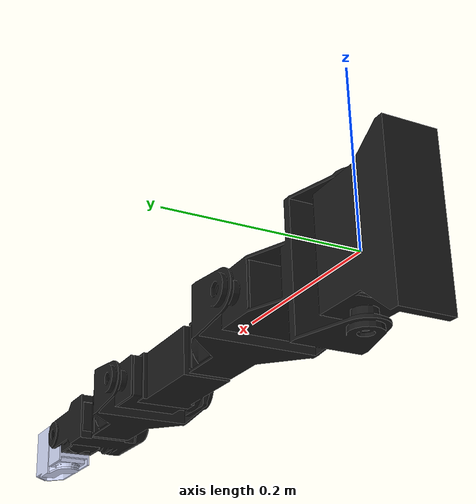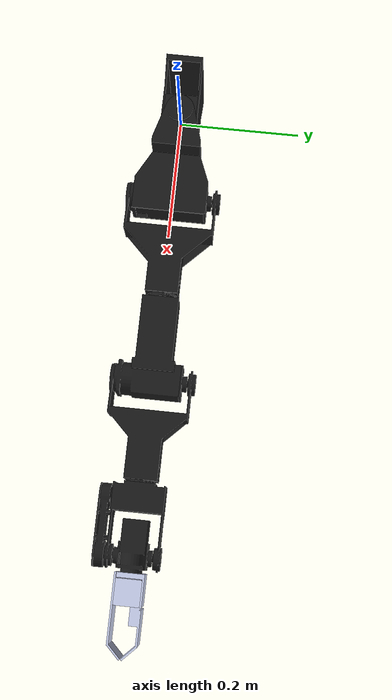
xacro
<?xml version="1.0"?>
<robot name="rb1_arm" xmlns:xacro="http://www.ros.org/wiki/xacro">

	<!-- Imported elements -->

	<!-- First we import all posible elements defined in the urdf.xacro files. All these elements are defined as macro:xacros -->

	<!-- Import RB1 arm elements -->
	<xacro:include filename="$(find rb1_arm_description)/urdf/arms/rb1_arm_7dof.urdf.xacro" />

	<!-- Import all available sensors -->
	<!-- xacro:include filename="$(find rb1_arm_description)/urdf/sensors/all_sensors.urdf.xacro" / -->

	<xacro:include filename="$(find rb1_arm_description)/urdf/grippers/rb1_gripper_1.urdf.xacro" />

	<!-- Joint elements -->
	<joint
	  name="gripper_joint"
      type="fixed">
		<origin
		  xyz="0.055 0.0 0.0"
		  rpy="0.0 0.0 0.0" />
		<parent link="end_effector_rb1_arm" />
		<child link="base_link_gripper" />
		<axis xyz="1 0 0" />
	</joint>

	<!-- Global parameters -->
	<xacro:property name="PI" value="3.1415926535897931"/>

	<!-- Flag to select the high or low quality model -->
	<xacro:property name="hq" value="true" />

	<!-- RB-1 arm -->
	<xacro:rb1_arm_7dof name="rb1_arm_7dof" hq="${hq}" />

	<!-- Gazebo ros control plugins -->
	<!-- xacro:ros_control/ -->

</robot>

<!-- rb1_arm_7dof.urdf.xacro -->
<robot name="rb1_arm_7dof" xmlns:xacro="http://www.ros.org/wiki/xacro">

	<xacro:include filename="$(find rb1_arm_description)/urdf/arms/rb1_arm_7dof.gazebo.xacro" />

	<xacro:property name="j1_mechanical_reduction" value="502.0"/>
	<xacro:property name="j1_motor_torque_constant" value="50.0"/>
	<xacro:property name="j2_mechanical_reduction" value="502.0"/>
	<xacro:property name="j2_motor_torque_constant" value="50.0"/>
	<xacro:property name="j3_mechanical_reduction" value="502.0"/>
	<xacro:property name="j3_motor_torque_constant" value="50.0"/>
	<xacro:property name="j4_mechanical_reduction" value="502.0"/>
	<xacro:property name="j4_motor_torque_constant" value="5.0"/>
	<xacro:property name="j5_mechanical_reduction" value="502.0"/>
	<xacro:property name="j5_motor_torque_constant" value="5.0"/>
	<xacro:property name="j6_mechanical_reduction" value="304.0"/>
	<xacro:property name="j6_motor_torque_constant" value="3.0"/>
	<xacro:property name="j7_mechanical_reduction" value="304.0"/>
	<xacro:property name="j7_motor_torque_constant" value="3.0"/>

	<xacro:property name="j1_lower_limit" value="-1.55"/>
	<xacro:property name="j1_upper_limit" value="1.55"/>
	<xacro:property name="j2_lower_limit" value="-1.95"/>
	<xacro:property name="j2_upper_limit" value="1.55"/>
	<xacro:property name="j3_lower_limit" value="-3.13"/>
	<xacro:property name="j3_upper_limit" value="3.13"/>
	<xacro:property name="j4_lower_limit" value="-1.95"/>
	<xacro:property name="j4_upper_limit" value="1.95"/>
	<xacro:property name="j5_lower_limit" value="-3.13"/>
	<xacro:property name="j5_upper_limit" value="3.13"/>
	<xacro:property name="j6_lower_limit" value="-1.57"/>
	<xacro:property name="j6_upper_limit" value="1.57"/>
	<xacro:property name="j7_lower_limit" value="-3.13"/>
	<xacro:property name="j7_upper_limit" value="3.13"/>

	<xacro:property name="joint_effort_limit_H54_200" value="60.0"/>
	<xacro:property name="joint_velocity_limit_H54_200" value="2.9217"/>
	<xacro:property name="joint_effort_limit_H54_100" value="35.0"/>
	<xacro:property name="joint_velocity_limit_H54_100" value="3.1527"/>
	<xacro:property name="joint_effort_limit_L42" value="8.0"/>
	<xacro:property name="joint_velocity_limit_L42" value="2.98452"/>

	<xacro:property name="joint_damping" value="0.7"/>
	<xacro:property name="joint_friction" value="0.5"/>

	<xacro:macro name="rb1_arm_7dof" params="name hq">

    <!-- Robot mechanical and motor parameters -->
    <xacro:property name="PI" value="3.1415926535897931"/>

    <!-- BASE_LINK -->
    <link
      name="base_link_rb1_arm">
    </link>

	<joint
		  name="j1_rb1_arm"
		  type="fixed">
		<origin
		  xyz="0.0 0.0 0.0"
		  rpy="0.0 0.0 0.0" />
		<parent
		  link="base_link_rb1_arm" />
		<child
		  link="link01_rb1_arm" />
		<axis
		  xyz="0 0 0" />
	</joint>

	<link name="link01_rb1_arm">
		<inertial>
		  <mass value="0.506" />
		  <origin xyz="-0.05161 0 -0.003" />
		  <inertia  ixx="0.0014526484" ixy="0.0"  ixz="-8.792613e-005" iyy="0.0018217854" iyx="0.0"  iyz="0.0" izz="0.0008987159" />
		</inertial>
		<visual>
		   <origin xyz="0 0 0" rpy="0 0 0" />
		   <xacro:if value="${hq}">
		   <geometry>
			 <mesh filename="package://rb1_arm_description/meshes/arms/armRB1_1_link.dae"/>
		   </geometry>
		   </xacro:if>
		   <xacro:unless value="${hq}">
		   <geometry>
		   <mesh filename="package://rb1_arm_description/meshes/arms/armRB1_1_link.stl"/>
		   </geometry>
		   </xacro:unless>
		   <material name="darkgrey">
			 <color rgba="0.1 0.1 0.1 1"/>
		   </material>
		</visual>
		<collision>
		   <origin xyz="0 0 0" rpy="0 0 0 " />
		   <geometry>
			 <mesh filename="package://rb1_arm_description/meshes/arms/armRB1_1_link.dae"/>
		   </geometry>
		</collision>
	</link>

	<link name="motor01_rb1_arm">
		<inertial>
		  <mass value="0.855" />
		  <origin xyz="0 0 0.00693" />
		  <!--inertia  ixx="0.01" ixy="0.0"  ixz="0.0"  iyy="0.01"  iyz="0.0"  izz="0.01" /-->
		  <inertia ixx="0.001211476" ixy="0.0" ixz="6.05332e-006" iyy="0.001211334" iyz="0.0" izz="0.0003787678"/>

		</inertial>
		<visual>
		   <origin xyz="0 0 0" rpy="0 0 0" />
		   <xacro:if value="${hq}">
		   <geometry>
			 <mesh filename="package://rb1_arm_description/meshes/arms/armRB1_1_motor.dae"/>
		   </geometry>
		   </xacro:if>
		   <xacro:unless value="${hq}">
		   <geometry>
		   <mesh filename="package://rb1_arm_description/meshes/arms/armRB1_1_motor.stl"/>
		   </geometry>
		   </xacro:unless>
		   <material name="darkgrey">
			 <color rgba="0.1 0.1 0.1 1"/>
		   </material>
		</visual>
		<collision>
		   <origin xyz="0 0 0" rpy="0 0 0 " />
		   <geometry>
			 <mesh filename="package://rb1_arm_description/meshes/arms/armRB1_1_motor.dae"/>
		   </geometry>
		</collision>
	</link>

	<joint
		name="j01m_rb1_arm"
		type="fixed">
		<origin
		  xyz="0.0 0.0 0.0"
		  rpy="0.0 0.0 0.0" />
		<parent
		  link="link01_rb1_arm" />
		<child
		  link="motor01_rb1_arm" />
		<axis
		  xyz="0 0 0" />
	</joint>

    <!-- JOINT 1 -->
    <link name="link12_rb1_arm">
		<inertial>
		  <mass value="0.7" />
		  <origin xyz="0.07155 0.00229 -0.00028" />
		  <inertia  ixx="0.0018430902" ixy="0.0001075379"  ixz="2.683183e-005"  iyy="0.0023530852"  iyz="4.5192e-007"  izz="0.0016327528" />
		</inertial>
		<visual>
		   <origin xyz="0 0 0" rpy="0 0 0" />
		   <xacro:if value="${hq}">
		   <geometry>
			 <mesh filename="package://rb1_arm_description/meshes/arms/armRB1_12_link.dae"/>
		   </geometry>
		   </xacro:if>
		   <xacro:unless value="${hq}">
		   <geometry>
		   <mesh filename="package://rb1_arm_description/meshes/arms/armRB1_12_link.stl"/>
		   </geometry>
		   </xacro:unless>
		   <material name="darkgrey">
			 <color rgba="0.1 0.1 0.1 1"/>
		   </material>
		</visual>
		<collision>
		   <origin xyz="0 0 0" rpy="0 0 0 " />
		   <geometry>
			 <mesh filename="package://rb1_arm_description/meshes/arms/armRB1_12_link.dae"/>
		   </geometry>
		</collision>
	</link>

	<link name="motor12_rb1_arm">
		<inertial>
		  <mass value="0.855" />
		  <origin xyz="0.13488 -0.00693 0" />
		  <inertia ixx="0.001211476" ixy="-6.05332e-006" ixz="0.0" iyy="0.0003787678" iyz="0.0" izz="0.001211334"/>

		</inertial>
		<visual>
		   <origin xyz="0 0 0" rpy="0 0 0" />
		   <xacro:if value="${hq}">
		   <geometry>
			 <mesh filename="package://rb1_arm_description/meshes/arms/armRB1_12_motor.dae"/>
		   </geometry>
		   </xacro:if>
		   <xacro:unless value="${hq}">
		   <geometry>
		   <mesh filename="package://rb1_arm_description/meshes/arms/armRB1_12_motor.stl"/>
		   </geometry>
		   </xacro:unless>
		   <material name="darkgrey">
			 <color rgba="0.1 0.1 0.1 1"/>
		   </material>
		</visual>
		<collision>
		   <origin xyz="0 0 0" rpy="0 0 0 " />
		   <geometry>
			 <mesh filename="package://rb1_arm_description/meshes/arms/armRB1_12_motor.dae"/>
		   </geometry>
		</collision>
	</link>

	<joint
		name="j12m_rb1_arm"
		type="fixed">
		<origin
		  xyz="0.0 0.0 0.0"
		  rpy="0.0 0.0 0.0" />
		<parent
		  link="link12_rb1_arm" />
		<child
		  link="motor12_rb1_arm" />
		<axis
		  xyz="0 0 0" />
	</joint>

	<joint
		name="j1"
		type="revolute">
		<origin
			xyz="0 0 0"
			rpy="0.0 0.0 0.0" />
		<parent link="link01_rb1_arm" />
		<child link="link12_rb1_arm" />
		<axis xyz="0 0 1" />
		<limit effort="${joint_effort_limit_H54_200}" velocity="${joint_velocity_limit_H54_200}" upper="${j1_upper_limit}" lower="${j1_lower_limit}"/>
		<dynamics damping="${joint_damping}" friction="${joint_friction}"/>
	</joint>

    <transmission name="j1_trans">
	 <type>transmission_interface/SimpleTransmission</type>
     <joint name="j1" />
     <actuator name="j1_motor">
	    <hardwareInterface>EffortJointInterface</hardwareInterface>
        <mechanicalReduction>${j1_mechanical_reduction}</mechanicalReduction>
		<motorTorqueConstant>${j1_motor_torque_constant}</motorTorqueConstant>
	 </actuator>
    </transmission>

    <!-- JOINT 2 -->
	<link name="link23_rb1_arm">
		<inertial>
		  <mass value="0.429" />
		  <origin xyz="0.06076 0 -0.00014" />
		  <inertia  ixx="0.0011551458" ixy="-6.3e-010"  ixz="2.519546e-005"  iyy="0.0015754353"  iyz="-7.6e-010"  izz="0.0007798411" />
		</inertial>
		<visual>
		   <origin xyz="0 0 0" rpy="0 0 0" />
		   <xacro:if value="${hq}">
		   <geometry>
			 <mesh filename="package://rb1_arm_description/meshes/arms/armRB1_23_link.dae"/>
		   </geometry>
		   </xacro:if>
		   <xacro:unless value="${hq}">
		   <geometry>
		   <mesh filename="package://rb1_arm_description/meshes/arms/armRB1_23_link.stl"/>
		   </geometry>
		   </xacro:unless>
		   <material name="darkgrey">
			 <color rgba="0.1 0.1 0.1 1"/>
		   </material>
		</visual>
		<collision>
		   <origin xyz="0 0 0" rpy="0 0 0 " />
		   <geometry>
			 <mesh filename="package://rb1_arm_description/meshes/arms/armRB1_23_link.dae"/>
		   </geometry>
		</collision>
	</link>

	<link name="motor23_rb1_arm">
		<inertial>
		  <mass value="0.732" />
		  <origin xyz="0.11598 0 0.00014" />
		  <!--inertia  ixx="0.01" ixy="0.0"  ixz="0.0"  iyy="0.01"  iyz="0.0"  izz="0.01" /-->
		  <inertia ixx="0.02661733557" ixy="0.00029270634" ixz="0.00392189887" iyy="0.02844355207" iyz="0.0010838933" izz="0.01248008322"/>

		</inertial>
		<visual>
		   <origin xyz="0 0 0" rpy="0 0 0" />
		   <xacro:if value="${hq}">
		   <geometry>
			 <mesh filename="package://rb1_arm_description/meshes/arms/armRB1_23_motor.dae"/>
		   </geometry>
		   </xacro:if>
		   <xacro:unless value="${hq}">
		   <geometry>
		   <mesh filename="package://rb1_arm_description/meshes/arms/armRB1_23_motor.stl"/>
		   </geometry>
		   </xacro:unless>
		   <material name="darkgrey">
			 <color rgba="0.1 0.1 0.1 1"/>
		   </material>
		</visual>
		<collision>
		   <origin xyz="0 0 0" rpy="0 0 0 " />
		   <geometry>
			 <mesh filename="package://rb1_arm_description/meshes/arms/armRB1_23_motor.dae"/>
		   </geometry>
		</collision>
	</link>

	<joint
		name="j23m_rb1_arm"
		type="fixed">
		<origin
		  xyz="0.0 0.0 0.0"
		  rpy="0.0 0.0 0.0" />
		<parent
		  link="link23_rb1_arm" />
		<child
		  link="motor23_rb1_arm" />
		<axis
		  xyz="0 0 0" />
	</joint>

	<joint
		name="j2"
		type="revolute">
	  <origin
        xyz="0.135 0 0"
        rpy="${PI/2} 0.0 0.0" />
	  <parent link="link12_rb1_arm" />
      <child link="link23_rb1_arm" />
      <!-- check -->
      <!-- axis xyz="0 0 -1" / -->
      <axis xyz="0 0 1"/>
      <limit effort="${joint_effort_limit_H54_200}" velocity="${joint_velocity_limit_H54_200}" upper="${j2_upper_limit}" lower="${j2_lower_limit}"/>
      <dynamics damping="${joint_damping}" friction="${joint_friction}"/>
    </joint>

    <transmission name="j2_trans">
	 <type>transmission_interface/SimpleTransmission</type>
     <joint name="j2" />
     <actuator name="j2_motor">
	    <hardwareInterface>EffortJointInterface</hardwareInterface>
        <mechanicalReduction>${j2_mechanical_reduction}</mechanicalReduction>
		<motorTorqueConstant>${j2_motor_torque_constant}</motorTorqueConstant>
	 </actuator>
    </transmission>

    <!-- JOINT 3 -->
   <link name="link34_rb1_arm">
		<inertial>
		  <mass value="0.351" />
		  <origin xyz="-0.07306 0 -0.00466" />
		  <inertia  ixx="0.0003749308" ixy="0.0"  ixz="-0.0001258961"  iyy="0.0010047174"  iyz="0.0"  izz="0.0009318091" />
		</inertial>
		<visual>
		   <origin xyz="0 0 0" rpy="0 0 0" />
		   <xacro:if value="${hq}">
		   <geometry>
			 <mesh filename="package://rb1_arm_description/meshes/arms/armRB1_34_link.dae"/>
		   </geometry>
		   </xacro:if>
		   <xacro:unless value="${hq}">
		   <geometry>
		   <mesh filename="package://rb1_arm_description/meshes/arms/armRB1_34_link.stl"/>
		   </geometry>
		   </xacro:unless>
		   <material name="darkgrey">
			 <color rgba="0.1 0.1 0.1 1"/>
		   </material>
		</visual>
		<collision>
		   <origin xyz="0 0 0" rpy="0 0 0 " />
		   <geometry>
			 <mesh filename="package://rb1_arm_description/meshes/arms/armRB1_34_link.dae"/>
		   </geometry>
		</collision>
	</link>

	<link name="motor34_rb1_arm">
		<inertial>
		  <mass value="0.732" />
		  <origin xyz="0.00014 0 0.00698" />
		  <inertia ixx="0.0007977173" ixy="0.0" ixz="-5.17658e-006" iyy="0.000797409" iyz="0.0" izz="0.0003233065"/>

		</inertial>
		<visual>
		   <origin xyz="0 0 0" rpy="0 0 0" />
		   <xacro:if value="${hq}">
		   <geometry>
			 <mesh filename="package://rb1_arm_description/meshes/arms/armRB1_34_motor.dae"/>
		   </geometry>
		   </xacro:if>
		   <xacro:unless value="${hq}">
		   <geometry>
		   <mesh filename="package://rb1_arm_description/meshes/arms/armRB1_34_motor.stl"/>
		   </geometry>
		   </xacro:unless>
		   <material name="darkgrey">
			 <color rgba="0.1 0.1 0.1 1"/>
		   </material>
		</visual>
		<collision>
		   <origin xyz="0 0 0" rpy="0 0 0 " />
		   <geometry>
			 <mesh filename="package://rb1_arm_description/meshes/arms/armRB1_34_motor.dae"/>
		   </geometry>
		</collision>
	</link>

	<joint
		name="j34m_rb1_arm"
		type="fixed">
		<origin
		  xyz="0.0 0.0 0.0"
		  rpy="0.0 0.0 0.0" />
		<parent
		  link="link34_rb1_arm" />
		<child
		  link="motor34_rb1_arm" />
		<axis
		  xyz="0 0 0" />
	</joint>

	<joint
		name="j3"
		type="revolute">
	  <origin
        xyz="0.310 0 0"
        rpy="0.0 0.0 0.0" />
	  <parent link="link23_rb1_arm" />
      <child link="link34_rb1_arm" />
      <axis xyz="1 0 0" />
      <limit effort="${joint_effort_limit_H54_100}" velocity="${joint_velocity_limit_H54_100}" upper="${j3_upper_limit}" lower="${j3_lower_limit}"/>
      <dynamics damping="${joint_damping}" friction="${joint_friction}"/>
    </joint>

    <transmission name="j3_trans">
	 <type>transmission_interface/SimpleTransmission</type>
     <joint name="j3" />
     <actuator name="j3_motor">
	    <hardwareInterface>EffortJointInterface</hardwareInterface>
        <mechanicalReduction>${j3_mechanical_reduction}</mechanicalReduction>
		<motorTorqueConstant>${j3_motor_torque_constant}</motorTorqueConstant>
	 </actuator>
    </transmission>

			<!-- JOINT 4 -->
   <link name="link45_rb1_arm">
		<inertial>
		  <mass value="0.388" />
		  <origin xyz="0.05882 0 -0.00029" />
		  <inertia  ixx="0.0008598409" ixy="-6.1e-010"  ixz="2.148066e-005"  iyy="0.00127317"  iyz="-6.6e-010"  izz="0.0007358862" />
		</inertial>
		<visual>
		   <origin xyz="0 0 0" rpy="0 0 0" />
		   <xacro:if value="${hq}">
		   <geometry>
			 <mesh filename="package://rb1_arm_description/meshes/arms/armRB1_45_link.dae"/>
		   </geometry>
		   </xacro:if>
		   <xacro:unless value="${hq}">
		   <geometry>
		   <mesh filename="package://rb1_arm_description/meshes/arms/armRB1_45_link.stl"/>
		   </geometry>
		   </xacro:unless>
		   <material name="darkgrey">
			 <color rgba="0.1 0.1 0.1 1"/>
		   </material>
		</visual>
		<collision>
		   <origin xyz="0 0 0" rpy="0 0 0 " />
		   <geometry>
			 <mesh filename="package://rb1_arm_description/meshes/arms/armRB1_45_link.dae"/>
		   </geometry>
		</collision>
	</link>

	<link name="motor45_rb1_arm">
		<inertial>
		  <mass value="0.732" />
		  <origin xyz="0.11398 0 0.00014" />
		  <inertia  ixx="0.0003233065" ixy="0.0"  ixz="-5.17658e-006"  iyy="0.000797409"  iyz="0.0"  izz="0.0007977173" />

		</inertial>
		<visual>
		   <origin xyz="0 0 0" rpy="0 0 0" />
		   <xacro:if value="${hq}">
		   <geometry>
			 <mesh filename="package://rb1_arm_description/meshes/arms/armRB1_45_motor.dae"/>
		   </geometry>
		   </xacro:if>
		   <xacro:unless value="${hq}">
		   <geometry>
		   <mesh filename="package://rb1_arm_description/meshes/arms/armRB1_45_motor.stl"/>
		   </geometry>
		   </xacro:unless>
		   <material name="darkgrey">
			 <color rgba="0.1 0.1 0.1 1"/>
		   </material>
		</visual>
		<collision>
		   <origin xyz="0 0 0" rpy="0 0 0 " />
		   <geometry>
			 <mesh filename="package://rb1_arm_description/meshes/arms/armRB1_45_motor.dae"/>
		   </geometry>
		</collision>
	</link>

	<joint
		name="j45m_rb1_arm"
		type="fixed">
		<origin
		  xyz="0.0 0.0 0.0"
		  rpy="0.0 0.0 0.0" />
		<parent
		  link="link45_rb1_arm" />
		<child
		  link="motor45_rb1_arm" />
		<axis
		  xyz="0 0 0" />
	</joint>

	<joint
		name="j4"
		type="revolute">
	  <origin
        xyz="0 0 0"
        rpy="0.0 0.0 0.0" />
	  <parent link="link34_rb1_arm" />
      <child link="link45_rb1_arm" />
      <!-- check -->
      <!-- xis xyz="0 0 -1" / -->
      <axis xyz="0 0 1"/>
      <limit effort="${joint_effort_limit_H54_100}" velocity="${joint_velocity_limit_H54_100}" upper="${j4_upper_limit}" lower="${j4_lower_limit}"/>
      <dynamics damping="${joint_damping}" friction="${joint_friction}"/>
    </joint>

    <transmission name="j4_trans">
	 <type>transmission_interface/SimpleTransmission</type>
     <joint name="j4" />
     <actuator name="j4_motor">
	    <hardwareInterface>EffortJointInterface</hardwareInterface>
        <mechanicalReduction>${j4_mechanical_reduction}</mechanicalReduction>
		<motorTorqueConstant>${j4_motor_torque_constant}</motorTorqueConstant>
	 </actuator>
    </transmission>

    <!-- JOINT 5 -->
   <link name="link56_rb1_arm">
		<inertial>
		  <mass value="0.3559" />
		  <origin xyz="-0.05587 0 0.0189" />
		  <inertia  ixx="0.0006065534" ixy="-3.8893e-007"  ixz="8.365509e-005"  iyy="0.0012291083"  iyz="-2.9944e-007"  izz="0.000821452" />
		</inertial>
		<visual>
		   <origin xyz="0 0 0" rpy="0 0 0" />
		   <xacro:if value="${hq}">
		   <geometry>
			 <mesh filename="package://rb1_arm_description/meshes/arms/armRB1_56_link.dae"/>
		   </geometry>
		   </xacro:if>
		   <xacro:unless value="${hq}">
		   <geometry>
		   <mesh filename="package://rb1_arm_description/meshes/arms/armRB1_56_link.stl"/>
		   </geometry>
		   </xacro:unless>
		   <material name="darkgrey">
			 <color rgba="0.1 0.1 0.1 1"/>
		   </material>
		</visual>
		<collision>
		   <origin xyz="0 0 0" rpy="0 0 0 " />
		   <geometry>
			 <mesh filename="package://rb1_arm_description/meshes/arms/armRB1_56_link.dae"/>
		   </geometry>
		</collision>
	</link>

	<link name="motor56_rb1_arm">
		<inertial>
		  <mass value="0.34" />
		  <origin xyz="0 0 0" />
		  <inertia  ixx="0.0002196171" ixy="0.0"  ixz="2.3781e-006"  iyy="0.0002200183"  iyz="0.0"  izz="9.300873e-005" />

		</inertial>
		<visual>
		   <origin xyz="0 0 0" rpy="0 0 0" />
		   <xacro:if value="${hq}">
		   <geometry>
			 <mesh filename="package://rb1_arm_description/meshes/arms/armRB1_56_motor.dae"/>
		   </geometry>
		   </xacro:if>
		   <xacro:unless value="${hq}">
		   <geometry>
		   <mesh filename="package://rb1_arm_description/meshes/arms/armRB1_56_motor.stl"/>
		   </geometry>
		   </xacro:unless>
		   <material name="darkgrey">
			 <color rgba="0.1 0.1 0.1 1"/>
		   </material>
		</visual>
		<collision>
		   <origin xyz="0 0 0" rpy="0 0 0 " />
		   <geometry>
			 <mesh filename="package://rb1_arm_description/meshes/arms/armRB1_56_motor.dae"/>
		   </geometry>
		</collision>
	</link>

	<joint
		name="j56m_rb1_arm"
		type="fixed">
		<origin
		  xyz="0.0 0.0 0.0"
		  rpy="0.0 0.0 0.0" />
		<parent
		  link="link56_rb1_arm" />
		<child
		  link="motor56_rb1_arm" />
		<axis
		  xyz="0 0 0" />
	</joint>

	<joint
		name="j5"
		type="revolute">
	  <origin
        xyz="0.285 0 0"
        rpy="0.0 0.0 0.0" />
	  <parent link="link45_rb1_arm" />
      <child link="link56_rb1_arm" />
      <axis xyz="1 0 0" />
      <limit effort="${joint_effort_limit_H54_100}" velocity="${joint_velocity_limit_H54_100}" upper="${j5_upper_limit}" lower="${j5_lower_limit}"/>
      <dynamics damping="${joint_damping}" friction="${joint_friction}"/>
    </joint>

    <transmission name="j5_trans">
	 <type>transmission_interface/SimpleTransmission</type>
     <joint name="j5" />
     <actuator name="j5_motor">
	    <hardwareInterface>EffortJointInterface</hardwareInterface>
        <mechanicalReduction>${j5_mechanical_reduction}</mechanicalReduction>
		<motorTorqueConstant>${j5_motor_torque_constant}</motorTorqueConstant>
	 </actuator>
    </transmission>

    <!-- JOINT 6 -->
   <link name="link67_rb1_arm">
		<inertial>
		  <mass value="0.055" />
		  <origin xyz="-0.00099 0 0.0035" />
		  <inertia  ixx="4.888031e-005" ixy="0.0"  ixz="1.5733e-007"  iyy="4.899477e-005"  iyz="0.0"  izz="9.65717e-006" />
		</inertial>
		<visual>
		   <origin xyz="0 0 0" rpy="0 0 0" />
		   <xacro:if value="${hq}">
		   <geometry>
			 <mesh filename="package://rb1_arm_description/meshes/arms/armRB1_67_link.dae"/>
		   </geometry>
		   </xacro:if>
		   <xacro:unless value="${hq}">
		   <geometry>
		   <mesh filename="package://rb1_arm_description/meshes/arms/armRB1_67_link.stl"/>
		   </geometry>
		   </xacro:unless>
		   <material name="darkgrey">
			 <color rgba="0.1 0.1 0.1 1"/>
		   </material>
		</visual>
		<collision>
		   <origin xyz="0 0 0" rpy="0 0 0 " />
		   <geometry>
			 <mesh filename="package://rb1_arm_description/meshes/arms/armRB1_67_link.dae"/>
		   </geometry>
		</collision>
	</link>

	<link name="motor67_rb1_arm">
		<inertial>
		  <mass value="0.34" />
		  <origin xyz="-0.01895 -0.00019 0" />
		  <inertia  ixx="9.300873e-005" ixy="2.3781e-006"  ixz="0.0"  iyy="0.0002196171"  iyz="0.0"  izz="0.0002200183" />

		</inertial>
		<visual>
		   <origin xyz="0 0 0" rpy="0 0 0" />
		   <xacro:if value="${hq}">
		   <geometry>
			 <mesh filename="package://rb1_arm_description/meshes/arms/armRB1_67_motor.dae"/>
		   </geometry>
		   </xacro:if>
		   <xacro:unless value="${hq}">
		   <geometry>
		   <mesh filename="package://rb1_arm_description/meshes/arms/armRB1_67_motor.stl"/>
		   </geometry>
		   </xacro:unless>
		   <material name="darkgrey">
			 <color rgba="0.1 0.1 0.1 1"/>
		   </material>
		</visual>
		<collision>
		   <origin xyz="0 0 0" rpy="0 0 0 " />
		   <geometry>
			 <mesh filename="package://rb1_arm_description/meshes/arms/armRB1_67_motor.dae"/>
		   </geometry>
		</collision>
	</link>

	<joint
		name="j67m_rb1_arm"
		type="fixed">
		<origin
		  xyz="0.0 0.0 0.0"
		  rpy="0.0 0.0 0.0" />
		<parent
		  link="link67_rb1_arm" />
		<child
		  link="motor67_rb1_arm" />
		<axis
		  xyz="0 0 0" />
	</joint>

	<joint
		name="j6"
		type="revolute">
	  <origin
        xyz="0 0 0"
        rpy="0.0 0.0 0.0" />
	  <parent link="link56_rb1_arm" />
      <child link="link67_rb1_arm" />
      <!-- check -->
      <!-- axis xyz="0 0 -1" / -->
      <axis xyz="0 0 1"/>
      <limit effort="${joint_effort_limit_L42}" velocity="${joint_velocity_limit_L42}" upper="${j6_upper_limit}" lower="${j6_lower_limit}"/>
      <dynamics damping="${joint_damping}" friction="${joint_friction}"/>
    </joint>

    <transmission name="j6_trans">
	 <type>transmission_interface/SimpleTransmission</type>
     <joint name="j6" />
     <actuator name="j6_motor">
	    <hardwareInterface>EffortJointInterface</hardwareInterface>
        <mechanicalReduction>${j6_mechanical_reduction}</mechanicalReduction>
		<motorTorqueConstant>${j6_motor_torque_constant}</motorTorqueConstant>
	 </actuator>
    </transmission>

	<!-- JOINT 7 -->
	<joint name="j7" type="revolute">
	  <origin
        xyz="0 0 0"
        rpy="1.5708 0.0 0.0" />
	  <parent link="link67_rb1_arm" />
      <child link="end_effector_rb1_arm" />
      <axis xyz="1 0 0" />
      <limit effort="${joint_effort_limit_L42}" velocity="${joint_velocity_limit_L42}" upper="${j7_upper_limit}" lower="${j7_lower_limit}"/>
      <dynamics damping="${joint_damping}" friction="${joint_friction}"/>
    </joint>

    <transmission name="j7_trans">
		<type>transmission_interface/SimpleTransmission</type>
		<joint name="j7" />
		<actuator name="j7_motor">
			<hardwareInterface>EffortJointInterface</hardwareInterface>
			<mechanicalReduction>${j7_mechanical_reduction}</mechanicalReduction>
			<motorTorqueConstant>${j7_motor_torque_constant}</motorTorqueConstant>
		</actuator>
    </transmission>

	<link name="end_effector_rb1_arm">
    </link>

  </xacro:macro>
</robot>

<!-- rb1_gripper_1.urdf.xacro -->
<robot name="two_finger_gripper" xmlns:xacro="http://www.ros.org/wiki/xacro">

  <xacro:property name="finger_mechanical_reduction" value="304.0"/>
  <xacro:property name="finger_motor_torque_constant" value="3.0"/>
  <xacro:property name="joint_effort_limit" value="3.0"/>
  <xacro:property name="joint_velocity_limit" value="2.98452"/>
	<xacro:property name="finger_lower_limit" value="-0.7"/>
	<xacro:property name="finger_upper_limit" value="0.0"/>

  <xacro:include filename="$(find rb1_arm_description)/urdf/grippers/rb1_gripper_1.gazebo.xacro" />

  <link
    name="base_link_gripper">
    <inertial>
      <origin
        xyz="0.0 0.0 0.0"
        rpy="0 0 0" />
      <mass
        value="0.257" />
      <inertia
        ixx="0.000131356"
        ixy="0.0"
        ixz="0.000000083"
        iyy="0.000130775"
        iyz="0.0"
        izz="0.00006918" />
    </inertial>
    <visual>
      <origin
        xyz="0 0 0"
        rpy="0 0 0" />
      <geometry>
        <mesh
          filename="package://rb1_arm_description/meshes/grippers/v1/gripper_motor.dae" />
      </geometry>
      <material
        name="">
        <color
          rgba="0.79216 0.81961 0.93333 1" />
      </material>
    </visual>
    <collision>
      <origin
        xyz="0 0 0"
        rpy="0 0 0" />
      <geometry>
        <mesh
          filename="package://rb1_arm_description/meshes/grippers/v1/gripper_motor.dae" />
      </geometry>
      <contact_coefficients kd="1.0" kp="1000.0" mu="0"/>
    </collision>
  </link>

  <link
    name="link_finger1">
    <inertial>
      <origin
        xyz="0.0 0.0 0.0"
        rpy="0 0 0" />
      <mass
        value="0.1264" />
      <inertia
        ixx="0.000097351"
        ixy="0.000056737"
        ixz="0.000000245"
        iyy="0.000315015"
        iyz="0.000001224"
        izz="0.000319853" />
    </inertial>
    <visual>
      <origin
        xyz="0 0 0"
        rpy="0 0 0" />
      <geometry>
        <mesh
          filename="package://rb1_arm_description/meshes/grippers/v1/gripper_link1.dae" />
      </geometry>
      <material
        name="">
        <color
          rgba="0.792156862745098 0.819607843137255 0.933333333333333 1" />
      </material>
    </visual>
    <collision>
      <origin
        xyz="0 0 0"
        rpy="0 0 0" />
      <geometry>
        <mesh
          filename="package://rb1_arm_description/meshes/grippers/v1/gripper_link1.dae" />
      </geometry>
    </collision>
  </link>

  <joint
    name="jg1"
    type="fixed">
    <origin
      xyz="0.0 0.0 0"
      rpy="0.0 0.0 0.0" />
    <parent
      link="base_link_gripper" />
    <child
      link="link_finger1" />
  </joint>

  <link
    name="link_finger2">
    <inertial>
      <origin
        xyz="0.0 0.0 0.0"
        rpy="0 0 0" />
      <mass
        value="0.0633" />
      <inertia
        ixx="0.000062574"
        ixy="-0.00005905"
        ixz="0.000009803"
        iyy="0.000292473"
        iyz="-0.00000366"
        izz="0.00027232" />
    </inertial>
    <visual>
      <origin
        xyz="0 0 0"
        rpy="0 0 0" />
      <geometry>
        <mesh
          filename="package://rb1_arm_description/meshes/grippers/v1/gripper_link2.dae" />
      </geometry>
      <material
        name="">
        <color
          rgba="0.792156862745098 0.819607843137255 0.933333333333333 1" />
      </material>
    </visual>
    <collision>
      <origin
        xyz="0 0 0"
        rpy="0 0 0" />
      <geometry>
        <mesh
          filename="package://rb1_arm_description/meshes/grippers/v1/gripper_link1.dae" />
      </geometry>
    </collision>
  </link>
  <joint
    name="jg2"
    type="revolute">
    <origin
      xyz="0.0 0.0 0"
      rpy="0.0 0.0 0.0" />
    <parent
      link="base_link_gripper" />
    <child
      link="link_finger2" />
    <axis
      xyz="0 0 1" />
    <limit effort="${joint_effort_limit}" velocity="${joint_velocity_limit}" upper="${finger_upper_limit}" lower="${finger_lower_limit}"/>
    <dynamics damping="${joint_damping}" friction="${joint_friction}"/>
  </joint>

  <transmission name="jg2_trans">
	 <type>transmission_interface/SimpleTransmission</type>
     <joint name="jg2" />
     <actuator name="jg2_motor">
	    <hardwareInterface>EffortJointInterface</hardwareInterface>
        <mechanicalReduction>${finger_mechanical_reduction}</mechanicalReduction>
		<motorTorqueConstant>${finger_motor_torque_constant}</motorTorqueConstant>
	 </actuator>
  </transmission>

</robot>
